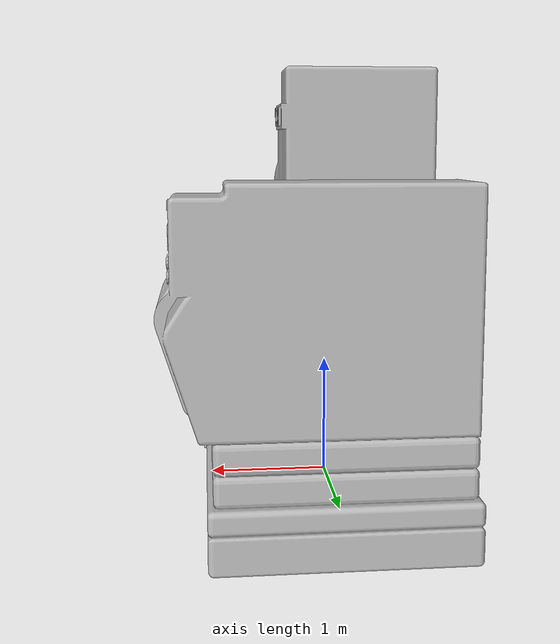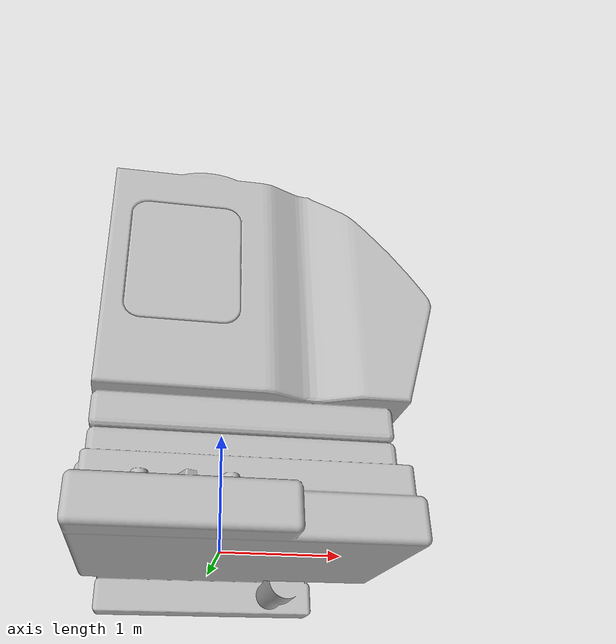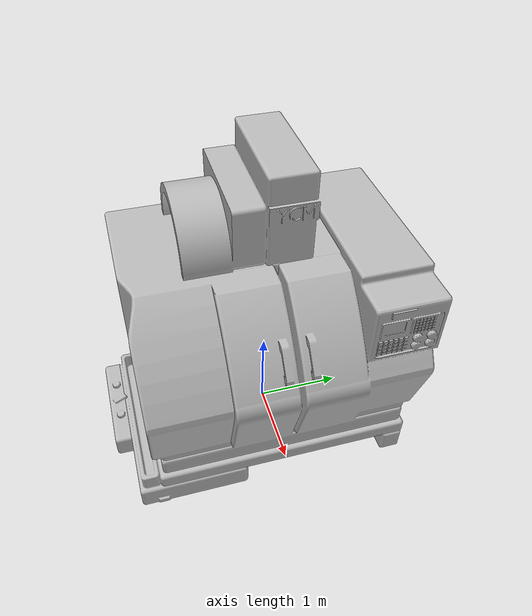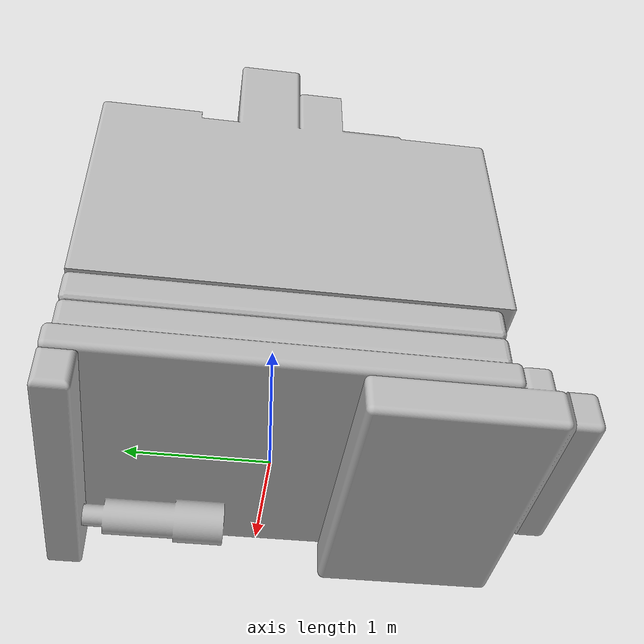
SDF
<?xml version="1.0" ?>
<sdf version="1.6">
  <model name="YCM-FV102A">
    <static>true</static>
    <link name="link">
      <visual name="visual">
        <geometry>
          <mesh>
            <uri>model://YCM-FV102A/meshes/YCM-FV102A.obj</uri>
          </mesh>
        </geometry>
      </visual>
      <collision name="collision">
        <geometry>
          <mesh>
            <uri>model://YCM-FV102A/meshes/YCM-FV102A.obj</uri>
          </mesh>
        </geometry>
      </collision>
    </link>
  </model>
</sdf>
